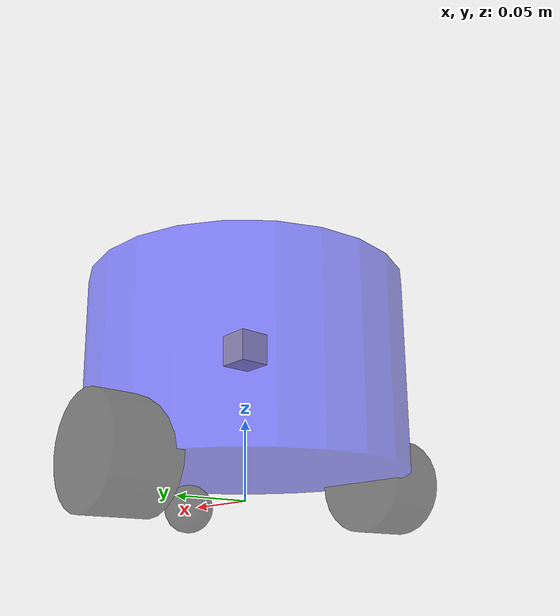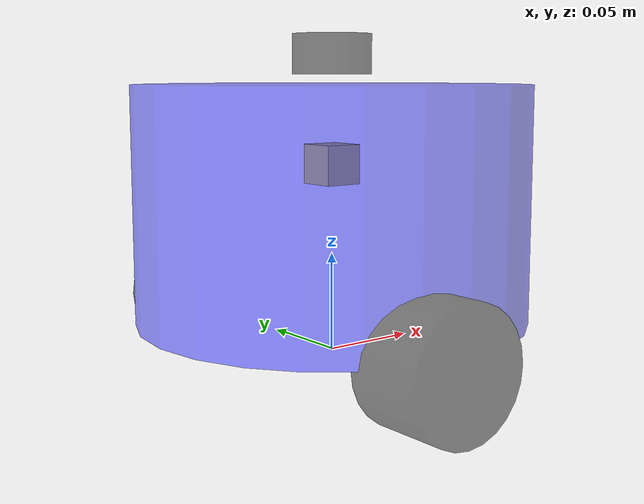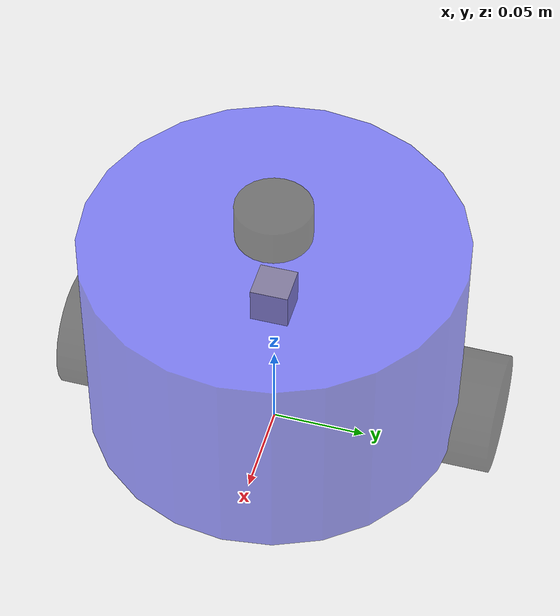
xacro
<?xml version="1.0"?>
<robot name="fishbot">

  <!-- Robot Footprint -->
  <link name="base_footprint"/>

  <joint name="base_joint" type="fixed">
    <parent link="base_footprint"/>
    <child link="base_link"/>
    <origin xyz="0.0 0.0 0.076" rpy="0 0 0"/>
  </joint>

  <!-- base link -->
  <link name="base_link">
  	<visual>
      <origin xyz="0 0 0.0" rpy="0 0 0"/>
      <geometry>
		<cylinder length="0.12" radius="0.10"/>
      </geometry>
      <material name="blue">
      	<color rgba="0.1 0.1 1.0 0.5" />
      </material>
    </visual>
    <collision>
      <origin xyz="0 0 0.0" rpy="0 0 0"/>
      <geometry>
		<cylinder length="0.12" radius="0.10"/>
      </geometry>
      <material name="blue">
      	<color rgba="0.1 0.1 1.0 0.5" />
      </material>
    </collision>
    <inertial>
      <mass value="0.2"/>
      <inertia ixx="0.0122666" ixy="0" ixz="0" iyy="0.0122666" iyz="0" izz="0.02"/>
    </inertial>
  </link>

  <!-- laser link -->
  <link name="laser_link">
    <visual>
      <origin xyz="0 0 0" rpy="0 0 0"/>
      <geometry>
        <cylinder length="0.02" radius="0.02"/>
      </geometry>
      <material name="black">
        <color rgba="0.0 0.0 0.0 0.5" />
      </material>
    </visual>
    <collision>
      <origin xyz="0 0 0" rpy="0 0 0"/>
      <geometry>
        <cylinder length="0.02" radius="0.02"/>
      </geometry>
      <material name="black">
        <color rgba="0.0 0.0 0.0 0.5" />
      </material>
    </collision>
    <inertial>
    <mass value="0.1"/>
      <inertia ixx="0.000190416666667" ixy="0" ixz="0" iyy="0.0001904" iyz="0" izz="0.00036"/>
    </inertial>
  </link>

  <!-- laser joint -->
  <joint name="laser_joint" type="fixed">
      <parent link="base_link" />
      <child link="laser_link" />
      <origin xyz="0 0 0.075" />
  </joint>

  <link name="imu_link">
  	<visual>
      <origin xyz="0 0 0.0" rpy="0 0 0"/>
      <geometry>
		    <box size="0.02 0.02 0.02"/>
      </geometry>
    </visual>
    <collision>
      <origin xyz="0 0 0.0" rpy="0 0 0"/>
      <geometry>
		    <box size="0.02 0.02 0.02"/>
      </geometry>
    </collision>
    <inertial>
      <mass value="0.1"/>
        <inertia ixx="0.000190416666667" ixy="0" ixz="0" iyy="0.0001904" iyz="0" izz="0.00036"/>
      </inertial>
  </link>

  <!-- imu joint -->
  <joint name="imu_joint" type="fixed">
      <parent link="base_link" />
      <child link="imu_link" />
      <origin xyz="0 0 0.02" />
  </joint>

  <link name="left_wheel_link">
      <visual>
        <origin xyz="0 0 0" rpy="1.57079 0 0"/>
        <geometry>
          <cylinder length="0.04" radius="0.032"/>
        </geometry>
          <material name="black">
            <color rgba="0.0 0.0 0.0 0.5" />
          </material>
      </visual>
      <collision>
        <origin xyz="0 0 0" rpy="1.57079 0 0"/>
        <geometry>
          <cylinder length="0.04" radius="0.032"/>
        </geometry>
          <material name="black">
            <color rgba="0.0 0.0 0.0 0.5" />
          </material>
      </collision>
      <inertial>
        <mass value="0.2"/>
          <inertia ixx="0.000190416666667" ixy="0" ixz="0" iyy="0.0001904" iyz="0" izz="0.00036"/>
        </inertial>
  </link>

  <link name="right_wheel_link">
      <visual>
        <origin xyz="0 0 0" rpy="1.57079 0 0"/>
        <geometry>
          <cylinder length="0.04" radius="0.032"/>
        </geometry>
          <material name="black">
            <color rgba="0.0 0.0 0.0 0.5" />
          </material>
      </visual>
      <collision>
        <origin xyz="0 0 0" rpy="1.57079 0 0"/>
        <geometry>
          <cylinder length="0.04" radius="0.032"/>
        </geometry>
          <material name="black">
            <color rgba="0.0 0.0 0.0 0.5" />
          </material>
      </collision>
      <inertial>
      <mass value="0.2"/>
      <inertia ixx="0.000190416666667" ixy="0" ixz="0" iyy="0.0001904" iyz="0" izz="0.00036"/>
    </inertial>
  </link>

  <joint name="left_wheel_joint" type="continuous">
      <parent link="base_link" />
      <child link="left_wheel_link" />
      <origin xyz="-0.02 0.10 -0.06" />
      <axis xyz="0 1 0" />
  </joint>

  <joint name="right_wheel_joint" type="continuous">
      <parent link="base_link" />
      <child link="right_wheel_link" />
      <origin xyz="-0.02 -0.10 -0.06" />
      <axis xyz="0 1 0" />
  </joint>

  <link name="caster_link">
      <visual>
        <origin xyz="0 0 0" rpy="1.57079 0 0"/>
        <geometry>
            <sphere radius="0.016"/>
        </geometry>
          <material name="black">
            <color rgba="0.0 0.0 0.0 0.5" />
          </material>
      </visual>
      <collision>
        <origin xyz="0 0 0" rpy="1.57079 0 0"/>
        <geometry>
            <sphere radius="0.016"/>
        </geometry>
          <material name="black">
            <color rgba="0.0 0.0 0.0 0.5" />
          </material>
      </collision>
      <inertial>
      <mass value="0.02"/>
      <inertia ixx="0.000190416666667" ixy="0" ixz="0" iyy="0.0001904" iyz="0" izz="0.00036"/>
    </inertial>
  </link>

  <joint name="caster_joint" type="fixed">
      <parent link="base_link" />
      <child link="caster_link" />
      <origin xyz="0.06 0.0 -0.076" />
      <axis xyz="0 1 0" />
  </joint>

  <gazebo reference="caster_link">
    <material>Gazebo/Black</material>
  </gazebo>

  <gazebo reference="caster_link">
    <mu1 value="0.0"/>
    <mu2 value="0.0"/>
    <kp value="1000000.0" />
    <kd value="10.0" />
  </gazebo>

  <gazebo>
    <plugin name='diff_drive' filename='libgazebo_ros_diff_drive.so'>
          <ros>
            <namespace>/</namespace>
            <remapping>cmd_vel:=cmd_vel</remapping>
            <remapping>odom:=odom</remapping>
          </ros>
          <update_rate>30</update_rate>
          <!-- wheels -->
          <left_joint>left_wheel_joint</left_joint>
          <right_joint>right_wheel_joint</right_joint>
          <!-- kinematics -->
          <wheel_separation>0.2</wheel_separation>
          <wheel_diameter>0.065</wheel_diameter>
          <!-- limits -->
          <max_wheel_torque>20</max_wheel_torque>
          <max_wheel_acceleration>1.0</max_wheel_acceleration>
          <!-- output -->
          <publish_odom>true</publish_odom>
          <publish_odom_tf>true</publish_odom_tf>
          <publish_wheel_tf>false</publish_wheel_tf>
          <odometry_frame>odom</odometry_frame>
          <robot_base_frame>base_footprint</robot_base_frame>
      </plugin>

      <plugin name="fishbot_joint_state" filename="libgazebo_ros_joint_state_publisher.so">
        <ros>
          <remapping>~/out:=joint_states</remapping>
        </ros>
        <update_rate>30</update_rate>
        <joint_name>right_wheel_joint</joint_name>
        <joint_name>left_wheel_joint</joint_name>
      </plugin>
      </gazebo>

      <gazebo reference="laser_link">
        <material>Gazebo/Black</material>
      </gazebo>

    <gazebo reference="imu_link">
      <sensor name="imu_sensor" type="imu">
      <plugin filename="libgazebo_ros_imu_sensor.so" name="imu_plugin">
          <ros>
            <namespace>/</namespace>
            <remapping>~/out:=imu</remapping>
          </ros>
          <initial_orientation_as_reference>false</initial_orientation_as_reference>
        </plugin>
        <always_on>true</always_on>
        <update_rate>100</update_rate>
        <visualize>true</visualize>
        <imu>
          <angular_velocity>
            <x>
              <noise type="gaussian">
                <mean>0.0</mean>
                <stddev>2e-4</stddev>
                <bias_mean>0.0000075</bias_mean>
                <bias_stddev>0.0000008</bias_stddev>
              </noise>
            </x>
            <y>
              <noise type="gaussian">
                <mean>0.0</mean>
                <stddev>2e-4</stddev>
                <bias_mean>0.0000075</bias_mean>
                <bias_stddev>0.0000008</bias_stddev>
              </noise>
            </y>
            <z>
              <noise type="gaussian">
                <mean>0.0</mean>
                <stddev>2e-4</stddev>
                <bias_mean>0.0000075</bias_mean>
                <bias_stddev>0.0000008</bias_stddev>
              </noise>
            </z>
          </angular_velocity>
          <linear_acceleration>
            <x>
              <noise type="gaussian">
                <mean>0.0</mean>
                <stddev>1.7e-2</stddev>
                <bias_mean>0.1</bias_mean>
                <bias_stddev>0.001</bias_stddev>
              </noise>
            </x>
            <y>
              <noise type="gaussian">
                <mean>0.0</mean>
                <stddev>1.7e-2</stddev>
                <bias_mean>0.1</bias_mean>
                <bias_stddev>0.001</bias_stddev>
              </noise>
            </y>
            <z>
              <noise type="gaussian">
                <mean>0.0</mean>
                <stddev>1.7e-2</stddev>
                <bias_mean>0.1</bias_mean>
                <bias_stddev>0.001</bias_stddev>
              </noise>
            </z>
          </linear_acceleration>
        </imu>
      </sensor>
    </gazebo>

    <gazebo reference="laser_link">
      <sensor name="laser_sensor" type="ray">
      <always_on>true</always_on>
      <visualize>true</visualize>
      <update_rate>5</update_rate>
      <pose>0 0 0.075 0 0 0</pose>
      <ray>
          <scan>
            <horizontal>
              <samples>360</samples>
              <resolution>1.000000</resolution>
              <min_angle>0.000000</min_angle>
              <max_angle>6.280000</max_angle>
            </horizontal>
          </scan>
          <range>
            <min>0.120000</min>
            <max>6</max>
            <resolution>0.015000</resolution>
          </range>
          <noise>
            <type>gaussian</type>
            <mean>0.0</mean>
            <stddev>0.01</stddev>
          </noise>
      </ray>

      <plugin name="laserscan" filename="libgazebo_ros_ray_sensor.so">
        <ros>
          <remapping>~/out:=scan</remapping>
        </ros>
        <output_type>sensor_msgs/LaserScan</output_type>
        <frame_name>laser_link</frame_name>
      </plugin>
      </sensor>
    </gazebo>

</robot>
